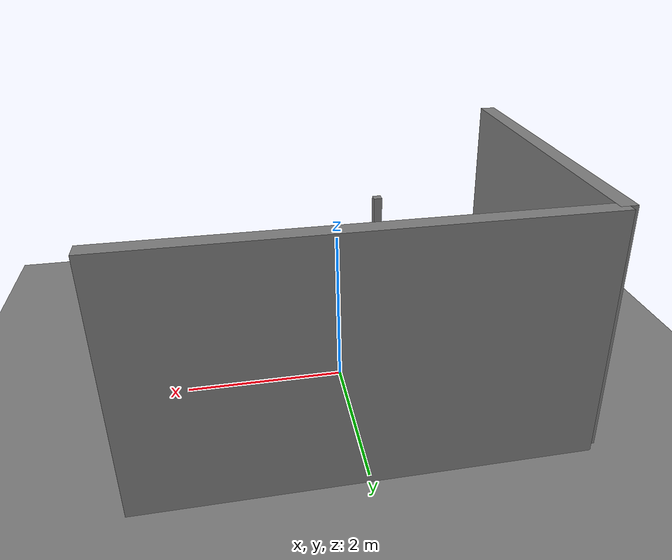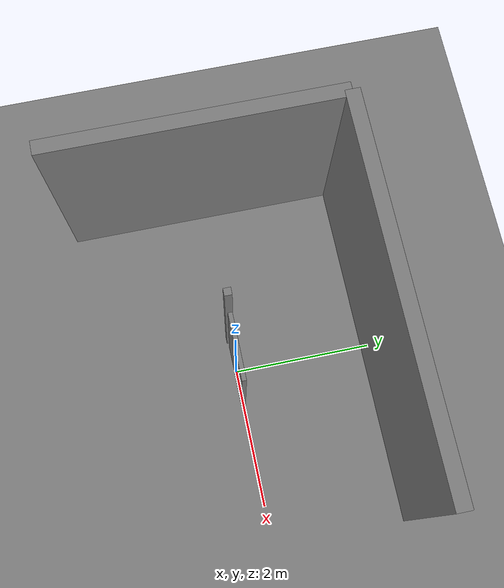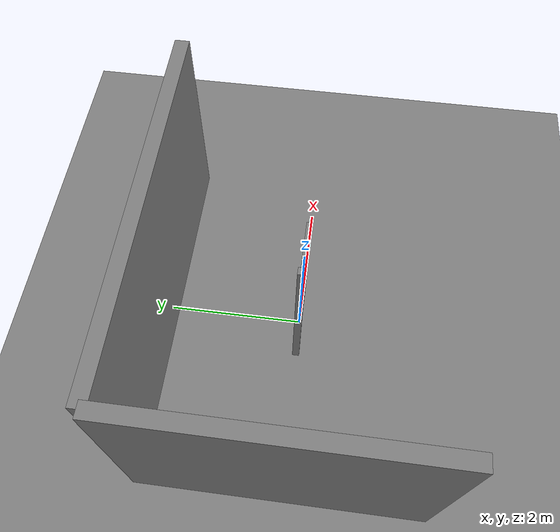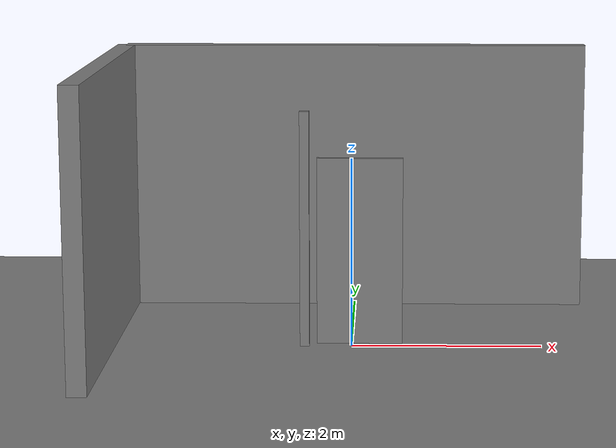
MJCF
<mujoco model="g19-building">
  <compiler angle="radian" autolimits="true"/>
  <option timestep="0.002"/>
  <default>
    <geom friction="1 0.005 0.0001"/>
  </default>
  <worldbody>
    <geom name="building_floor" type="plane" size="0 0 0.05" pos="0 0 0"/>
    <geom name="building_back_wall" type="box" size="0.1 2.0 1.5" pos="-2.6 0 1.5"/>
    <geom name="building_side_wall_north" type="box" size="2.6 0.1 1.5" pos="0 2.0 1.5"/>
    <body name="door_post" pos="-0.5 0 0">
      <geom name="door_post_geom" type="box" size="0.05 0.05 1.25" pos="0 0 1.25"/>
      <!-- 铰链在门柱外侧留 0.08 m 净空（门板半厚 0.03）：整扇门能真的转过去，不被门柱卡住。 -->
      <body name="door_panel" pos="0.13 0 0">
        <joint name="door_hinge" type="hinge" axis="0 0 1" range="-1.5 1.5" damping="0.1" frictionloss="0.05"/>
        <geom name="door_panel_geom" type="box" size="0.45 0.03 0.99" pos="0.45 0 1.02" mass="8" friction="0.2 0.005 0.0001"/>
      </body>
    </body>
  </worldbody>
  <actuator>
    <position name="door_drive" joint="door_hinge" kp="80" kv="8" ctrlrange="-1.6 1.6"/>
  </actuator>
</mujoco>
